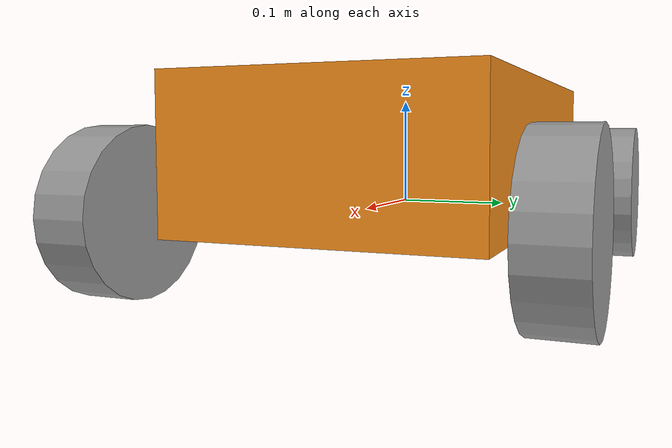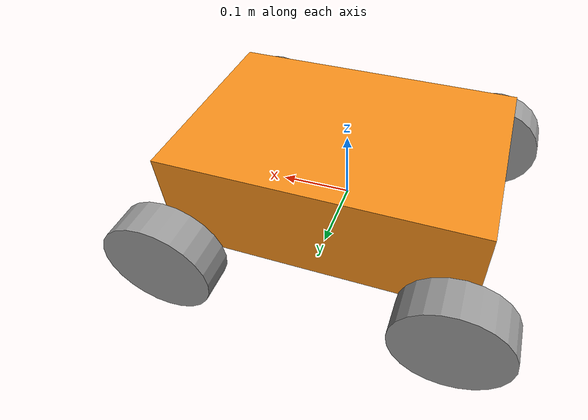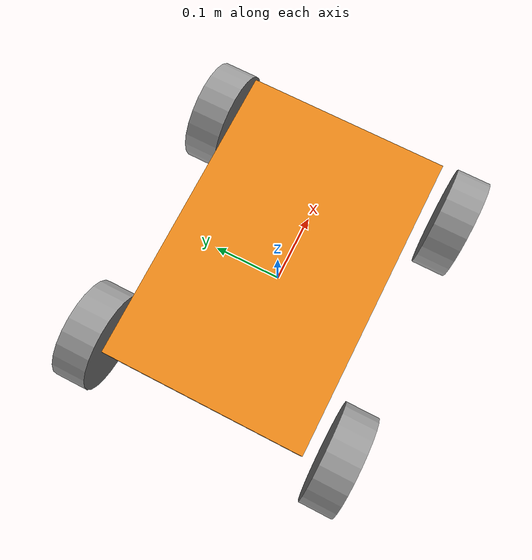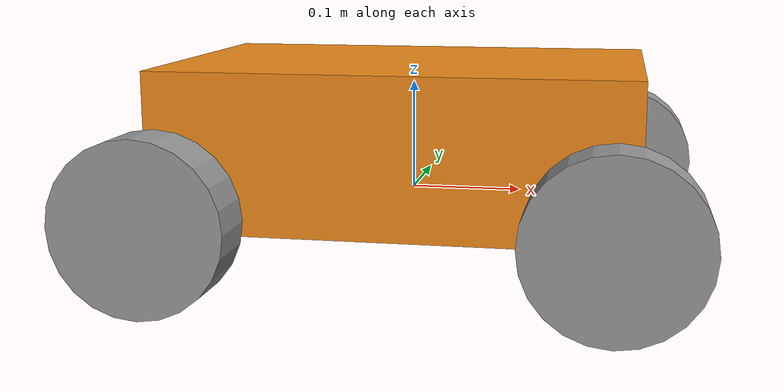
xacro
<?xml version="1.0"?>
<robot xmlns:xacro="http://www.ros.org/wiki/xacro"  name="roboost_mecanum_robot">

    <xacro:include filename="roboost_materials.xacro"/>

    <!-- TODO: determine values -->
    <xacro:property name="chassis_length" value="0.42"/>
    <xacro:property name="chassis_width" value="0.28"/>
    <xacro:property name="chassis_height" value="0.14"/>
    <xacro:property name="chassis_mass" value="20.0"/>
    <xacro:property name="chassis_inertia" value="4.0"/>

    <xacro:property name="wheel_radius" value="0.075"/>
    <xacro:property name="wheel_width" value="0.05"/>
    <xacro:property name="wheel_mass" value="1.0"/>
    <xacro:property name="wheel_inertia" value="0.1"/>

    <xacro:property name="wheelbase" value="0.38"/>
    <xacro:property name="track" value="0.32"/>

    <link name="world"></link>

    <link name="chassis_link">
        <visual>
            <geometry>
                <box size="${chassis_length} ${chassis_width} ${chassis_height}"/>
            </geometry>

            <origin xyz="0 0 0.05" rpy="0.0 0.0 0.0"/>

            <material name="orange"/>
        </visual>
        <collision>
            <geometry>
                <box size="${chassis_length} ${chassis_width} ${chassis_height}"/>
            </geometry>

            <origin xyz="0.0 0.0 0.0" rpy="0.0 0.0 0.0"/>
        </collision>
        <inertial>
            <mass value="${chassis_mass}"/>
            <origin xyz="0.0 0.0 ${chassis_height / 2}" rpy="0.0 0.0 0.0"/>
            <inertia ixx="${chassis_inertia}" ixy="0.0" ixz="0.0" iyy="${chassis_inertia}" iyz="0.0" izz="${chassis_inertia}"/>
        </inertial>
    </link>

    <link name="wheel_front_left_link">
        <visual>
            <geometry>
                <cylinder radius="${wheel_radius}" length="${wheel_width}"/>
            </geometry>

            <origin xyz="0.0 0.0 0.03" rpy="0.0 0.0 0.0"/>

            <material name="grey"/>
        </visual>
        <collision>
            <geometry>
                <cylinder radius="${wheel_radius}" length="${wheel_width}"/>
            </geometry>

            <origin xyz="0.0 0.0 0.03" rpy="0.0 0.0 0.0"/>
        </collision>
        <inertial>
            <mass value="1.0"/>
            <origin xyz="0.0 0.0 0.03" rpy="0.0 0.0 0.0"/>
            <inertia ixx="0.1" ixy="0.0" ixz="0.0" iyy="0.1" iyz="0.0" izz="0.1"/>
        </inertial>
    </link>

    <link name="wheel_front_right_link">
        <visual>
            <geometry>
                <cylinder radius="${wheel_radius}" length="${wheel_width}"/>
            </geometry>

            <origin xyz="0.0 0.0 0.03" rpy="0.0 0.0 0.0"/>

            <material name="grey"/>
        </visual>
        <collision>
            <geometry>
                <cylinder radius="${wheel_radius}" length="${wheel_width}"/>
            </geometry>

            <origin xyz="0.0 0.0 0.03" rpy="0.0 0.0 0.0"/>
        </collision>
        <inertial>
            <mass value="1.0"/>
            <origin xyz="0.0 0.0 0.03" rpy="0.0 0.0 0.0"/>
            <inertia ixx="0.1" ixy="0.0" ixz="0.0" iyy="0.1" iyz="0.0" izz="0.1"/>
        </inertial>
    </link>

    <link name="wheel_back_left_link">
        <visual>
            <geometry>
                <cylinder radius="${wheel_radius}" length="${wheel_width}"/>
            </geometry>

            <origin xyz="0.0 0.0 0.03" rpy="0.0 0.0 0.0"/>

            <material name="grey"/>
        </visual>
        <collision>
            <geometry>
                <cylinder radius="${wheel_radius}" length="${wheel_width}"/>
            </geometry>

            <origin xyz="0.0 0.0 0.03" rpy="0.0 0.0 0.0"/>
        </collision>
        <inertial>
            <mass value="1.0"/>
            <origin xyz="0.0 0.0 0.03" rpy="0.0 0.0 0.0"/>
            <inertia ixx="0.1" ixy="0.0" ixz="0.0" iyy="0.1" iyz="0.0" izz="0.1"/>
        </inertial>
    </link>

    <link name="wheel_back_right_link">
        <visual>
            <geometry>
                <cylinder radius="${wheel_radius}" length="${wheel_width}"/>
            </geometry>

            <origin xyz="0.0 0.0 0.03" rpy="0.0 0.0 0.0"/>

            <material name="grey"/>
        </visual>
        <collision>
            <geometry>
                <cylinder radius="${wheel_radius}" length="${wheel_width}"/>
            </geometry>

            <origin xyz="0.0 0.0 0.03" rpy="0.0 0.0 0.0"/>
        </collision>
        <inertial>
            <mass value="1.0"/>
            <origin xyz="0.0 0.0 0.0" rpy="0.0 0.0 0.0"/>
            <inertia ixx="0.1" ixy="0.0" ixz="0.0" iyy="0.1" iyz="0.0" izz="0.1"/>
        </inertial>
    </link>

    <joint name="world_to_chassis_joint" type="fixed">
        <parent link="world"/>
        <child link="chassis_link"/>
        <origin xyz="0.0 0.0 0.0" rpy="0.0 0.0 0.0"/>
    </joint>

    <joint name="wheel_front_left_joint" type="continuous">
        <parent link="chassis_link"/>
        <child link="wheel_front_left_link"/>
        <origin xyz="${wheelbase / 2} ${track / 2} 0.0" rpy="${pi * 3 / 2} 0.0 0.0"/>
        <axis xyz="0.0 0.0 1.0"/>
        <limit effort="1000.0" velocity="1000.0"/>
    </joint>

    <joint name="wheel_front_right_joint" type="continuous">
        <parent link="chassis_link"/>
        <child link="wheel_front_right_link"/>
        <origin xyz="${wheelbase / 2} -${track / 2} 0.0" rpy="${pi / 2} 0.0 0.0"/>
        <axis xyz="0.0 0.0 1.0"/>
        <limit effort="1000.0" velocity="1000.0"/>
    </joint>

    <joint name="wheel_back_left_joint" type="continuous">
        <parent link="chassis_link"/>
        <child link="wheel_back_left_link"/>
        <origin xyz="-${wheelbase / 2} ${track / 2} 0.0" rpy="${pi * 3 / 2} 0.0 0.0"/>
        <axis xyz="0.0 0.0 1.0"/>
        <limit effort="1000.0" velocity="1000.0"/>
    </joint>

    <joint name="wheel_back_right_joint" type="continuous">
        <parent link="chassis_link"/>
        <child link="wheel_back_right_link"/>
        <origin xyz="-${wheelbase / 2} -${track / 2} 0.0" rpy="${pi / 2} 0.0 0.0"/>
        <axis xyz="0.0 0.0 1.0"/>
        <limit effort="1000.0" velocity="1000.0"/>
    </joint>
</robot>
